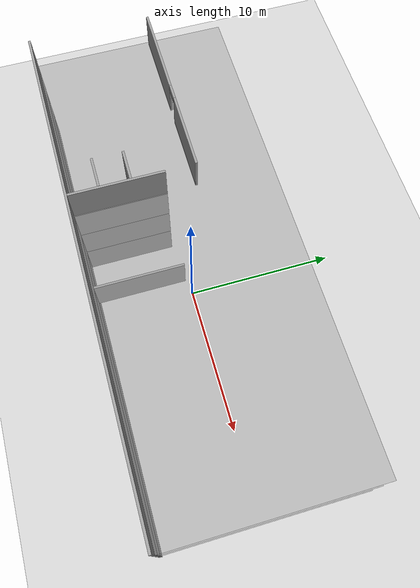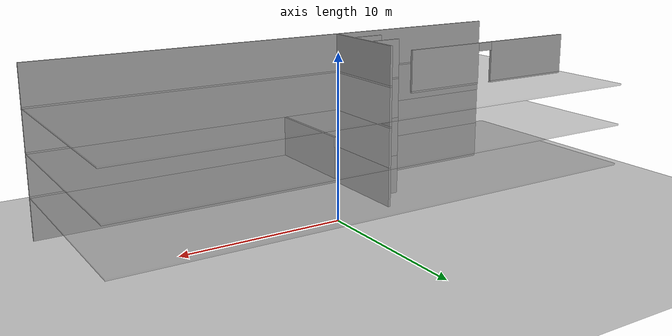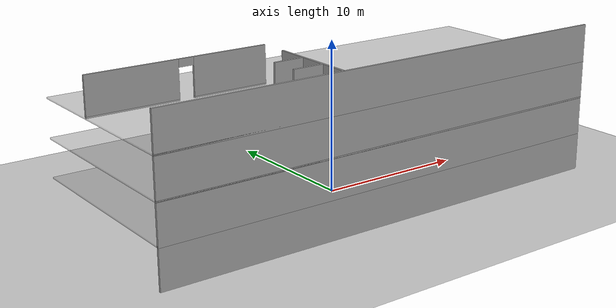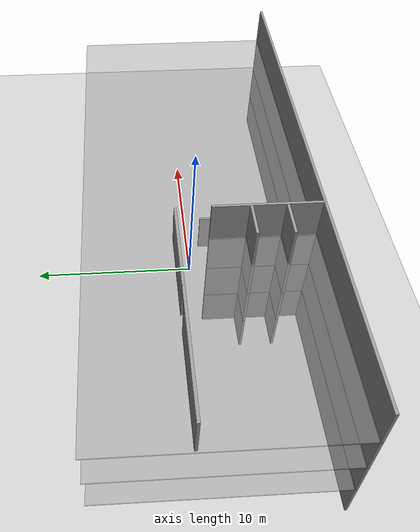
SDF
<sdf version="1.6">
 <world name="default">
  <model name="ground_plane">
   <static>1</static>
   <link name="link">
    <collision name="collision">
     <geometry><plane><normal>0 0 1</normal><size>100 100</size></plane></geometry>
     <surface>
      <contact><collide_bitmask>65535</collide_bitmask></contact>
      <friction><ode><mu>100</mu><mu2>50</mu2></ode></friction>
     </surface>
    </collision>
    <visual name="visual">
     <cast_shadows>0</cast_shadows>
     <geometry><plane><normal>0 0 1</normal><size>100 100</size></plane></geometry>
     <material>
      <script><uri>file://media/materials/scripts/gazebo.material</uri><name>Gazebo/Grey</name></script>
     </material>
    </visual>
   </link>
  </model>
  <model name="floor2plan_v2">
   <link name="Floor_0">
    <pose>1e-06 0 2.5 0 -0 0</pose>
    <inertial>
     <mass>1</mass>
     <inertia><ixx>1</ixx><ixy>0</ixy><ixz>0</ixz><iyy>1</iyy><iyz>0</iyz><izz>1</izz></inertia>
    </inertial>
    <visual name="Floor_0_Visual">
     <pose>0 0 0.05 0 -0 0</pose>
     <geometry><box><size>32 13.023 0.1</size></box></geometry>
     <material>
      <script><uri>file://media/materials/scripts/gazebo.material</uri><name>Gazebo/Grey</name></script>
      <ambient>1 1 1 1</ambient>
      <shader type="pixel"><normal_map>__default__</normal_map></shader>
      <diffuse>0.7 0.7 0.7 1</diffuse>
      <specular>0.01 0.01 0.01 1</specular>
      <emissive>0 0 0 1</emissive>
     </material>
     <meta><layer>1</layer></meta>
     <transparency>0.5</transparency>
    </visual>
    <collision name="Floor_0_Collision">
     <pose>0 0 0.05 0 -0 0</pose>
     <geometry><box><size>32 13.023 0.1</size></box></geometry>
     <surface>
      <friction>
       <ode><mu>1</mu><mu2>1</mu2><fdir1>0 0 0</fdir1><slip1>0</slip1><slip2>0</slip2></ode>
       <torsional>
        <coefficient>1</coefficient>
        <patch_radius>0</patch_radius>
        <surface_radius>0</surface_radius>
        <use_patch_radius>1</use_patch_radius>
        <ode><slip>0</slip></ode>
       </torsional>
      </friction>
      <bounce><restitution_coefficient>0</restitution_coefficient><threshold>1e+06</threshold></bounce>
      <contact>
       <collide_without_contact>0</collide_without_contact>
       <collide_without_contact_bitmask>1</collide_without_contact_bitmask>
       <collide_bitmask>1</collide_bitmask>
       <ode>
        <soft_cfm>0</soft_cfm>
        <soft_erp>0.2</soft_erp>
        <kp>1e+13</kp>
        <kd>1</kd>
        <max_vel>0.01</max_vel>
        <min_depth>0</min_depth>
       </ode>
       <bullet>
        <split_impulse>1</split_impulse>
        <split_impulse_penetration_threshold>-0.01</split_impulse_penetration_threshold>
        <soft_cfm>0</soft_cfm>
        <soft_erp>0.2</soft_erp>
        <kp>1e+13</kp>
        <kd>1</kd>
       </bullet>
      </contact>
     </surface>
    </collision>
   </link>
   <link name="Floor_1">
    <pose>1e-06 0 5 0 -0 0</pose>
    <inertial>
     <mass>1</mass>
     <inertia><ixx>1</ixx><ixy>0</ixy><ixz>0</ixz><iyy>1</iyy><iyz>0</iyz><izz>1</izz></inertia>
    </inertial>
    <visual name="Floor_1_Visual">
     <pose>0 0 0.05 0 -0 0</pose>
     <geometry><box><size>32 13.023 0.1</size></box></geometry>
     <material>
      <script><uri>file://media/materials/scripts/gazebo.material</uri><name>Gazebo/Grey</name></script>
      <ambient>1 1 1 1</ambient>
      <shader type="pixel"><normal_map>__default__</normal_map></shader>
      <diffuse>0.7 0.7 0.7 1</diffuse>
      <specular>0.01 0.01 0.01 1</specular>
      <emissive>0 0 0 1</emissive>
     </material>
     <meta><layer>2</layer></meta>
     <transparency>0.5</transparency>
    </visual>
    <collision name="Floor_1_Collision">
     <pose>0 0 0.05 0 -0 0</pose>
     <geometry><box><size>32 13.023 0.1</size></box></geometry>
     <surface>
      <friction>
       <ode><mu>1</mu><mu2>1</mu2><fdir1>0 0 0</fdir1><slip1>0</slip1><slip2>0</slip2></ode>
       <torsional>
        <coefficient>1</coefficient>
        <patch_radius>0</patch_radius>
        <surface_radius>0</surface_radius>
        <use_patch_radius>1</use_patch_radius>
        <ode><slip>0</slip></ode>
       </torsional>
      </friction>
      <bounce><restitution_coefficient>0</restitution_coefficient><threshold>1e+06</threshold></bounce>
      <contact>
       <collide_without_contact>0</collide_without_contact>
       <collide_without_contact_bitmask>1</collide_without_contact_bitmask>
       <collide_bitmask>1</collide_bitmask>
       <ode>
        <soft_cfm>0</soft_cfm>
        <soft_erp>0.2</soft_erp>
        <kp>1e+13</kp>
        <kd>1</kd>
        <max_vel>0.01</max_vel>
        <min_depth>0</min_depth>
       </ode>
       <bullet>
        <split_impulse>1</split_impulse>
        <split_impulse_penetration_threshold>-0.01</split_impulse_penetration_threshold>
        <soft_cfm>0</soft_cfm>
        <soft_erp>0.2</soft_erp>
        <kp>1e+13</kp>
        <kd>1</kd>
       </bullet>
      </contact>
     </surface>
    </collision>
   </link>
   <link name="Floor_2">
    <pose>1e-06 0 7.5 0 -0 0</pose>
    <inertial>
     <mass>1</mass>
     <inertia><ixx>1</ixx><ixy>0</ixy><ixz>0</ixz><iyy>1</iyy><iyz>0</iyz><izz>1</izz></inertia>
    </inertial>
    <visual name="Floor_2_Visual">
     <pose>0 0 0.05 0 -0 0</pose>
     <geometry><box><size>32 13.023 0.1</size></box></geometry>
     <material>
      <script><uri>file://media/materials/scripts/gazebo.material</uri><name>Gazebo/Grey</name></script>
      <ambient>1 1 1 1</ambient>
      <shader type="pixel"><normal_map>__default__</normal_map></shader>
      <diffuse>0.7 0.7 0.7 1</diffuse>
      <specular>0.01 0.01 0.01 1</specular>
      <emissive>0 0 0 1</emissive>
     </material>
     <meta><layer>3</layer></meta>
     <transparency>0.5</transparency>
    </visual>
    <collision name="Floor_2_Collision">
     <pose>0 0 0.05 0 -0 0</pose>
     <geometry><box><size>32 13.023 0.1</size></box></geometry>
     <surface>
      <friction>
       <ode><mu>1</mu><mu2>1</mu2><fdir1>0 0 0</fdir1><slip1>0</slip1><slip2>0</slip2></ode>
       <torsional>
        <coefficient>1</coefficient>
        <patch_radius>0</patch_radius>
        <surface_radius>0</surface_radius>
        <use_patch_radius>1</use_patch_radius>
        <ode><slip>0</slip></ode>
       </torsional>
      </friction>
      <bounce><restitution_coefficient>0</restitution_coefficient><threshold>1e+06</threshold></bounce>
      <contact>
       <collide_without_contact>0</collide_without_contact>
       <collide_without_contact_bitmask>1</collide_without_contact_bitmask>
       <collide_bitmask>1</collide_bitmask>
       <ode>
        <soft_cfm>0</soft_cfm>
        <soft_erp>0.2</soft_erp>
        <kp>1e+13</kp>
        <kd>1</kd>
        <max_vel>0.01</max_vel>
        <min_depth>0</min_depth>
       </ode>
       <bullet>
        <split_impulse>1</split_impulse>
        <split_impulse_penetration_threshold>-0.01</split_impulse_penetration_threshold>
        <soft_cfm>0</soft_cfm>
        <soft_erp>0.2</soft_erp>
        <kp>1e+13</kp>
        <kd>1</kd>
       </bullet>
      </contact>
     </surface>
    </collision>
   </link>
   <link name="Wall_10">
    <pose>1e-06 -6.4365 0 0 -0 0</pose>
    <visual name="Wall_10_Visual">
     <pose>0 0 1.25 0 -0 0</pose>
     <geometry><box><size>32 0.15 2.5</size></box></geometry>
     <material>
      <script><uri>file://media/materials/scripts/gazebo.material</uri><name>Gazebo/Grey</name></script>
      <ambient>1 1 1 1</ambient>
      <shader type="pixel"/>
      <diffuse>0.7 0.7 0.7 1</diffuse>
      <specular>0.01 0.01 0.01 1</specular>
      <emissive>0 0 0 1</emissive>
     </material>
     <meta><layer>0</layer></meta>
    </visual>
    <collision name="Wall_10_Collision">
     <pose>0 0 1.25 0 -0 0</pose>
     <geometry><box><size>32 0.15 2.5</size></box></geometry>
     <surface>
      <friction>
       <ode><mu>1</mu><mu2>1</mu2><fdir1>0 0 0</fdir1><slip1>0</slip1><slip2>0</slip2></ode>
       <torsional>
        <coefficient>1</coefficient>
        <patch_radius>0</patch_radius>
        <surface_radius>0</surface_radius>
        <use_patch_radius>1</use_patch_radius>
        <ode><slip>0</slip></ode>
       </torsional>
      </friction>
      <bounce><restitution_coefficient>0</restitution_coefficient><threshold>1e+06</threshold></bounce>
      <contact>
       <collide_without_contact>0</collide_without_contact>
       <collide_without_contact_bitmask>1</collide_without_contact_bitmask>
       <collide_bitmask>1</collide_bitmask>
       <ode>
        <soft_cfm>0</soft_cfm>
        <soft_erp>0.2</soft_erp>
        <kp>1e+13</kp>
        <kd>1</kd>
        <max_vel>0.01</max_vel>
        <min_depth>0</min_depth>
       </ode>
       <bullet>
        <split_impulse>1</split_impulse>
        <split_impulse_penetration_threshold>-0.01</split_impulse_penetration_threshold>
        <soft_cfm>0</soft_cfm>
        <soft_erp>0.2</soft_erp>
        <kp>1e+13</kp>
        <kd>1</kd>
       </bullet>
      </contact>
     </surface>
    </collision>
   </link>
   <link name="Wall_100">
    <pose>1e-06 -6.4365 5 0 -0 0</pose>
    <visual name="Wall_100_Visual">
     <pose>0 0 1.25 0 -0 0</pose>
     <geometry><box><size>32 0.15 2.5</size></box></geometry>
     <material>
      <script><uri>file://media/materials/scripts/gazebo.material</uri><name>Gazebo/Grey</name></script>
      <ambient>1 1 1 1</ambient>
      <shader type="pixel"/>
      <diffuse>0.7 0.7 0.7 1</diffuse>
      <specular>0.01 0.01 0.01 1</specular>
      <emissive>0 0 0 1</emissive>
     </material>
     <meta><layer>2</layer></meta>
    </visual>
    <collision name="Wall_100_Collision">
     <pose>0 0 1.25 0 -0 0</pose>
     <geometry><box><size>32 0.15 2.5</size></box></geometry>
     <surface>
      <friction>
       <ode><mu>1</mu><mu2>1</mu2><fdir1>0 0 0</fdir1><slip1>0</slip1><slip2>0</slip2></ode>
       <torsional>
        <coefficient>1</coefficient>
        <patch_radius>0</patch_radius>
        <surface_radius>0</surface_radius>
        <use_patch_radius>1</use_patch_radius>
        <ode><slip>0</slip></ode>
       </torsional>
      </friction>
      <bounce><restitution_coefficient>0</restitution_coefficient><threshold>1e+06</threshold></bounce>
      <contact>
       <collide_without_contact>0</collide_without_contact>
       <collide_without_contact_bitmask>1</collide_without_contact_bitmask>
       <collide_bitmask>1</collide_bitmask>
       <ode>
        <soft_cfm>0</soft_cfm>
        <soft_erp>0.2</soft_erp>
        <kp>1e+13</kp>
        <kd>1</kd>
        <max_vel>0.01</max_vel>
        <min_depth>0</min_depth>
       </ode>
       <bullet>
        <split_impulse>1</split_impulse>
        <split_impulse_penetration_threshold>-0.01</split_impulse_penetration_threshold>
        <soft_cfm>0</soft_cfm>
        <soft_erp>0.2</soft_erp>
        <kp>1e+13</kp>
        <kd>1</kd>
       </bullet>
      </contact>
     </surface>
    </collision>
   </link>
   <link name="Wall_114">
    <pose>-3.9219 -3.43428 5 0 0 -1.5708</pose>
    <visual name="Wall_114_Visual">
     <pose>0 0 1.25 0 -0 0</pose>
     <geometry><box><size>6 0.15 2.5</size></box></geometry>
     <material>
      <script><uri>file://media/materials/scripts/gazebo.material</uri><name>Gazebo/Grey</name></script>
      <ambient>1 1 1 1</ambient>
      <shader type="pixel"/>
      <diffuse>0.7 0.7 0.7 1</diffuse>
      <specular>0.01 0.01 0.01 1</specular>
      <emissive>0 0 0 1</emissive>
     </material>
     <meta><layer>2</layer></meta>
    </visual>
    <collision name="Wall_114_Collision">
     <pose>0 0 1.25 0 -0 0</pose>
     <geometry><box><size>6 0.15 2.5</size></box></geometry>
     <surface>
      <friction>
       <ode><mu>1</mu><mu2>1</mu2><fdir1>0 0 0</fdir1><slip1>0</slip1><slip2>0</slip2></ode>
       <torsional>
        <coefficient>1</coefficient>
        <patch_radius>0</patch_radius>
        <surface_radius>0</surface_radius>
        <use_patch_radius>1</use_patch_radius>
        <ode><slip>0</slip></ode>
       </torsional>
      </friction>
      <bounce><restitution_coefficient>0</restitution_coefficient><threshold>1e+06</threshold></bounce>
      <contact>
       <collide_without_contact>0</collide_without_contact>
       <collide_without_contact_bitmask>1</collide_without_contact_bitmask>
       <collide_bitmask>1</collide_bitmask>
       <ode>
        <soft_cfm>0</soft_cfm>
        <soft_erp>0.2</soft_erp>
        <kp>1e+13</kp>
        <kd>1</kd>
        <max_vel>0.01</max_vel>
        <min_depth>0</min_depth>
       </ode>
       <bullet>
        <split_impulse>1</split_impulse>
        <split_impulse_penetration_threshold>-0.01</split_impulse_penetration_threshold>
        <soft_cfm>0</soft_cfm>
        <soft_erp>0.2</soft_erp>
        <kp>1e+13</kp>
        <kd>1</kd>
       </bullet>
      </contact>
     </surface>
    </collision>
   </link>
   <link name="Wall_121">
    <pose>-4.9749 -2.53328 5 0 -0 0</pose>
    <visual name="Wall_121_Visual">
     <pose>0 0 1.25 0 -0 0</pose>
     <geometry><box><size>2 0.15 2.5</size></box></geometry>
     <material>
      <script><uri>file://media/materials/scripts/gazebo.material</uri><name>Gazebo/Grey</name></script>
      <ambient>1 1 1 1</ambient>
      <shader type="pixel"/>
      <diffuse>0.7 0.7 0.7 1</diffuse>
      <specular>0.01 0.01 0.01 1</specular>
      <emissive>0 0 0 1</emissive>
     </material>
     <meta><layer>2</layer></meta>
    </visual>
    <collision name="Wall_121_Collision">
     <pose>0 0 1.25 0 -0 0</pose>
     <geometry><box><size>2 0.15 2.5</size></box></geometry>
     <surface>
      <friction>
       <ode><mu>1</mu><mu2>1</mu2><fdir1>0 0 0</fdir1><slip1>0</slip1><slip2>0</slip2></ode>
       <torsional>
        <coefficient>1</coefficient>
        <patch_radius>0</patch_radius>
        <surface_radius>0</surface_radius>
        <use_patch_radius>1</use_patch_radius>
        <ode><slip>0</slip></ode>
       </torsional>
      </friction>
      <bounce><restitution_coefficient>0</restitution_coefficient><threshold>1e+06</threshold></bounce>
      <contact>
       <collide_without_contact>0</collide_without_contact>
       <collide_without_contact_bitmask>1</collide_without_contact_bitmask>
       <collide_bitmask>1</collide_bitmask>
       <ode>
        <soft_cfm>0</soft_cfm>
        <soft_erp>0.2</soft_erp>
        <kp>1e+13</kp>
        <kd>1</kd>
        <max_vel>0.01</max_vel>
        <min_depth>0</min_depth>
       </ode>
       <bullet>
        <split_impulse>1</split_impulse>
        <split_impulse_penetration_threshold>-0.01</split_impulse_penetration_threshold>
        <soft_cfm>0</soft_cfm>
        <soft_erp>0.2</soft_erp>
        <kp>1e+13</kp>
        <kd>1</kd>
       </bullet>
      </contact>
     </surface>
    </collision>
   </link>
   <link name="Wall_122">
    <pose>-4.9979 -4.46528 5 0 -0 0</pose>
    <visual name="Wall_122_Visual">
     <pose>0 0 1.25 0 -0 0</pose>
     <geometry><box><size>2 0.15 2.5</size></box></geometry>
     <material>
      <script><uri>file://media/materials/scripts/gazebo.material</uri><name>Gazebo/Grey</name></script>
      <ambient>1 1 1 1</ambient>
      <shader type="pixel"/>
      <diffuse>0.7 0.7 0.7 1</diffuse>
      <specular>0.01 0.01 0.01 1</specular>
      <emissive>0 0 0 1</emissive>
     </material>
     <meta><layer>2</layer></meta>
    </visual>
    <collision name="Wall_122_Collision">
     <pose>0 0 1.25 0 -0 0</pose>
     <geometry><box><size>2 0.15 2.5</size></box></geometry>
     <surface>
      <friction>
       <ode><mu>1</mu><mu2>1</mu2><fdir1>0 0 0</fdir1><slip1>0</slip1><slip2>0</slip2></ode>
       <torsional>
        <coefficient>1</coefficient>
        <patch_radius>0</patch_radius>
        <surface_radius>0</surface_radius>
        <use_patch_radius>1</use_patch_radius>
        <ode><slip>0</slip></ode>
       </torsional>
      </friction>
      <bounce><restitution_coefficient>0</restitution_coefficient><threshold>1e+06</threshold></bounce>
      <contact>
       <collide_without_contact>0</collide_without_contact>
       <collide_without_contact_bitmask>1</collide_without_contact_bitmask>
       <collide_bitmask>1</collide_bitmask>
       <ode>
        <soft_cfm>0</soft_cfm>
        <soft_erp>0.2</soft_erp>
        <kp>1e+13</kp>
        <kd>1</kd>
        <max_vel>0.01</max_vel>
        <min_depth>0</min_depth>
       </ode>
       <bullet>
        <split_impulse>1</split_impulse>
        <split_impulse_penetration_threshold>-0.01</split_impulse_penetration_threshold>
        <soft_cfm>0</soft_cfm>
        <soft_erp>0.2</soft_erp>
        <kp>1e+13</kp>
        <kd>1</kd>
       </bullet>
      </contact>
     </surface>
    </collision>
   </link>
   <link name="Wall_126">
    <pose>1e-06 -6.4365 7.5 0 -0 0</pose>
    <visual name="Wall_126_Visual">
     <pose>0 0 1.25 0 -0 0</pose>
     <geometry><box><size>32 0.15 2.5</size></box></geometry>
     <material>
      <script><uri>file://media/materials/scripts/gazebo.material</uri><name>Gazebo/Grey</name></script>
      <ambient>1 1 1 1</ambient>
      <shader type="pixel"/>
      <diffuse>0.7 0.7 0.7 1</diffuse>
      <specular>0.01 0.01 0.01 1</specular>
      <emissive>0 0 0 1</emissive>
     </material>
     <meta><layer>3</layer></meta>
    </visual>
    <collision name="Wall_126_Collision">
     <pose>0 0 1.25 0 -0 0</pose>
     <geometry><box><size>32 0.15 2.5</size></box></geometry>
     <surface>
      <friction>
       <ode><mu>1</mu><mu2>1</mu2><fdir1>0 0 0</fdir1><slip1>0</slip1><slip2>0</slip2></ode>
       <torsional>
        <coefficient>1</coefficient>
        <patch_radius>0</patch_radius>
        <surface_radius>0</surface_radius>
        <use_patch_radius>1</use_patch_radius>
        <ode><slip>0</slip></ode>
       </torsional>
      </friction>
      <bounce><restitution_coefficient>0</restitution_coefficient><threshold>1e+06</threshold></bounce>
      <contact>
       <collide_without_contact>0</collide_without_contact>
       <collide_without_contact_bitmask>1</collide_without_contact_bitmask>
       <collide_bitmask>1</collide_bitmask>
       <ode>
        <soft_cfm>0</soft_cfm>
        <soft_erp>0.2</soft_erp>
        <kp>1e+13</kp>
        <kd>1</kd>
        <max_vel>0.01</max_vel>
        <min_depth>0</min_depth>
       </ode>
       <bullet>
        <split_impulse>1</split_impulse>
        <split_impulse_penetration_threshold>-0.01</split_impulse_penetration_threshold>
        <soft_cfm>0</soft_cfm>
        <soft_erp>0.2</soft_erp>
        <kp>1e+13</kp>
        <kd>1</kd>
       </bullet>
      </contact>
     </surface>
    </collision>
   </link>
   <link name="Wall_128">
    <pose>-9.9294 1.47672 7.5 0 -0 0</pose>
    <visual name="Wall_128_Visual_0">
     <pose>-3.007 0 1.25 0 -0 0</pose>
     <geometry><box><size>5.943 0.15 2.5</size></box></geometry>
     <material>
      <script><uri>file://media/materials/scripts/gazebo.material</uri><name>Gazebo/Grey</name></script>
      <ambient>1 1 1 1</ambient>
      <shader type="pixel"/>
      <diffuse>0.7 0.7 0.7 1</diffuse>
      <specular>0.01 0.01 0.01 1</specular>
      <emissive>0 0 0 1</emissive>
     </material>
     <meta><layer>3</layer></meta>
    </visual>
    <visual name="Wall_128_Visual_1">
     <pose>3.4715 0 1.25 0 -0 0</pose>
     <geometry><box><size>5.014 0.15 2.5</size></box></geometry>
     <material>
      <script><uri>file://media/materials/scripts/gazebo.material</uri><name>Gazebo/Grey</name></script>
      <ambient>1 1 1 1</ambient>
      <shader type="pixel"/>
      <diffuse>0.7 0.7 0.7 1</diffuse>
      <specular>0.01 0.01 0.01 1</specular>
      <emissive>0 0 0 1</emissive>
     </material>
     <meta><layer>3</layer></meta>
    </visual>
    <visual name="Wall_128_Visual_2">
     <pose>0.4645 0 2.25 0 -0 0</pose>
     <geometry><box><size>1 0.15 0.5</size></box></geometry>
     <material>
      <script><uri>file://media/materials/scripts/gazebo.material</uri><name>Gazebo/Grey</name></script>
      <ambient>1 1 1 1</ambient>
      <shader type="pixel"/>
      <diffuse>0.7 0.7 0.7 1</diffuse>
      <specular>0.01 0.01 0.01 1</specular>
      <emissive>0 0 0 1</emissive>
     </material>
     <meta><layer>3</layer></meta>
    </visual>
    <collision name="Wall_128_Collision_0">
     <pose>-3.007 0 1.25 0 -0 0</pose>
     <geometry><box><size>5.943 0.15 2.5</size></box></geometry>
     <surface>
      <friction>
       <ode><mu>1</mu><mu2>1</mu2><fdir1>0 0 0</fdir1><slip1>0</slip1><slip2>0</slip2></ode>
       <torsional>
        <coefficient>1</coefficient>
        <patch_radius>0</patch_radius>
        <surface_radius>0</surface_radius>
        <use_patch_radius>1</use_patch_radius>
        <ode><slip>0</slip></ode>
       </torsional>
      </friction>
      <bounce><restitution_coefficient>0</restitution_coefficient><threshold>1e+06</threshold></bounce>
      <contact>
       <collide_without_contact>0</collide_without_contact>
       <collide_without_contact_bitmask>1</collide_without_contact_bitmask>
       <collide_bitmask>1</collide_bitmask>
       <ode>
        <soft_cfm>0</soft_cfm>
        <soft_erp>0.2</soft_erp>
        <kp>1e+13</kp>
        <kd>1</kd>
        <max_vel>0.01</max_vel>
        <min_depth>0</min_depth>
       </ode>
       <bullet>
        <split_impulse>1</split_impulse>
        <split_impulse_penetration_threshold>-0.01</split_impulse_penetration_threshold>
        <soft_cfm>0</soft_cfm>
        <soft_erp>0.2</soft_erp>
        <kp>1e+13</kp>
        <kd>1</kd>
       </bullet>
      </contact>
     </surface>
    </collision>
    <collision name="Wall_128_Collision_2">
     <pose>0.4645 0 2.25 0 -0 0</pose>
     <geometry><box><size>1 0.15 0.5</size></box></geometry>
     <surface>
      <friction>
       <ode><mu>1</mu><mu2>1</mu2><fdir1>0 0 0</fdir1><slip1>0</slip1><slip2>0</slip2></ode>
       <torsional>
        <coefficient>1</coefficient>
        <patch_radius>0</patch_radius>
        <surface_radius>0</surface_radius>
        <use_patch_radius>1</use_patch_radius>
        <ode><slip>0</slip></ode>
       </torsional>
      </friction>
      <bounce><restitution_coefficient>0</restitution_coefficient><threshold>1e+06</threshold></bounce>
      <contact>
       <collide_without_contact>0</collide_without_contact>
       <collide_without_contact_bitmask>1</collide_without_contact_bitmask>
       <collide_bitmask>1</collide_bitmask>
       <ode>
        <soft_cfm>0</soft_cfm>
        <soft_erp>0.2</soft_erp>
        <kp>1e+13</kp>
        <kd>1</kd>
        <max_vel>0.01</max_vel>
        <min_depth>0</min_depth>
       </ode>
       <bullet>
        <split_impulse>1</split_impulse>
        <split_impulse_penetration_threshold>-0.01</split_impulse_penetration_threshold>
        <soft_cfm>0</soft_cfm>
        <soft_erp>0.2</soft_erp>
        <kp>1e+13</kp>
        <kd>1</kd>
       </bullet>
      </contact>
     </surface>
    </collision>
    <collision name="Wall_128_Collision_1">
     <pose>3.4715 0 1.25 0 -0 0</pose>
     <geometry><box><size>5.014 0.15 2.5</size></box></geometry>
     <surface>
      <friction>
       <ode><mu>1</mu><mu2>1</mu2><fdir1>0 0 0</fdir1><slip1>0</slip1><slip2>0</slip2></ode>
       <torsional>
        <coefficient>1</coefficient>
        <patch_radius>0</patch_radius>
        <surface_radius>0</surface_radius>
        <use_patch_radius>1</use_patch_radius>
        <ode><slip>0</slip></ode>
       </torsional>
      </friction>
      <bounce><restitution_coefficient>0</restitution_coefficient><threshold>1e+06</threshold></bounce>
      <contact>
       <collide_without_contact>0</collide_without_contact>
       <collide_without_contact_bitmask>1</collide_without_contact_bitmask>
       <collide_bitmask>1</collide_bitmask>
       <ode>
        <soft_cfm>0</soft_cfm>
        <soft_erp>0.2</soft_erp>
        <kp>1e+13</kp>
        <kd>1</kd>
        <max_vel>0.01</max_vel>
        <min_depth>0</min_depth>
       </ode>
       <bullet>
        <split_impulse>1</split_impulse>
        <split_impulse_penetration_threshold>-0.01</split_impulse_penetration_threshold>
        <soft_cfm>0</soft_cfm>
        <soft_erp>0.2</soft_erp>
        <kp>1e+13</kp>
        <kd>1</kd>
       </bullet>
      </contact>
     </surface>
    </collision>
   </link>
   <link name="Wall_140">
    <pose>-3.9219 -3.43428 7.5 0 0 -1.5708</pose>
    <visual name="Wall_140_Visual">
     <pose>0 0 1.25 0 -0 0</pose>
     <geometry><box><size>6 0.15 2.5</size></box></geometry>
     <material>
      <script><uri>file://media/materials/scripts/gazebo.material</uri><name>Gazebo/Grey</name></script>
      <ambient>1 1 1 1</ambient>
      <shader type="pixel"/>
      <diffuse>0.7 0.7 0.7 1</diffuse>
      <specular>0.01 0.01 0.01 1</specular>
      <emissive>0 0 0 1</emissive>
     </material>
     <meta><layer>3</layer></meta>
    </visual>
    <collision name="Wall_140_Collision">
     <pose>0 0 1.25 0 -0 0</pose>
     <geometry><box><size>6 0.15 2.5</size></box></geometry>
     <surface>
      <friction>
       <ode><mu>1</mu><mu2>1</mu2><fdir1>0 0 0</fdir1><slip1>0</slip1><slip2>0</slip2></ode>
       <torsional>
        <coefficient>1</coefficient>
        <patch_radius>0</patch_radius>
        <surface_radius>0</surface_radius>
        <use_patch_radius>1</use_patch_radius>
        <ode><slip>0</slip></ode>
       </torsional>
      </friction>
      <bounce><restitution_coefficient>0</restitution_coefficient><threshold>1e+06</threshold></bounce>
      <contact>
       <collide_without_contact>0</collide_without_contact>
       <collide_without_contact_bitmask>1</collide_without_contact_bitmask>
       <collide_bitmask>1</collide_bitmask>
       <ode>
        <soft_cfm>0</soft_cfm>
        <soft_erp>0.2</soft_erp>
        <kp>1e+13</kp>
        <kd>1</kd>
        <max_vel>0.01</max_vel>
        <min_depth>0</min_depth>
       </ode>
       <bullet>
        <split_impulse>1</split_impulse>
        <split_impulse_penetration_threshold>-0.01</split_impulse_penetration_threshold>
        <soft_cfm>0</soft_cfm>
        <soft_erp>0.2</soft_erp>
        <kp>1e+13</kp>
        <kd>1</kd>
       </bullet>
      </contact>
     </surface>
    </collision>
   </link>
   <link name="Wall_147">
    <pose>-4.9749 -2.53328 7.5 0 -0 0</pose>
    <visual name="Wall_147_Visual">
     <pose>0 0 1.25 0 -0 0</pose>
     <geometry><box><size>2 0.15 2.5</size></box></geometry>
     <material>
      <script><uri>file://media/materials/scripts/gazebo.material</uri><name>Gazebo/Grey</name></script>
      <ambient>1 1 1 1</ambient>
      <shader type="pixel"/>
      <diffuse>0.7 0.7 0.7 1</diffuse>
      <specular>0.01 0.01 0.01 1</specular>
      <emissive>0 0 0 1</emissive>
     </material>
     <meta><layer>3</layer></meta>
    </visual>
    <collision name="Wall_147_Collision">
     <pose>0 0 1.25 0 -0 0</pose>
     <geometry><box><size>2 0.15 2.5</size></box></geometry>
     <surface>
      <friction>
       <ode><mu>1</mu><mu2>1</mu2><fdir1>0 0 0</fdir1><slip1>0</slip1><slip2>0</slip2></ode>
       <torsional>
        <coefficient>1</coefficient>
        <patch_radius>0</patch_radius>
        <surface_radius>0</surface_radius>
        <use_patch_radius>1</use_patch_radius>
        <ode><slip>0</slip></ode>
       </torsional>
      </friction>
      <bounce><restitution_coefficient>0</restitution_coefficient><threshold>1e+06</threshold></bounce>
      <contact>
       <collide_without_contact>0</collide_without_contact>
       <collide_without_contact_bitmask>1</collide_without_contact_bitmask>
       <collide_bitmask>1</collide_bitmask>
       <ode>
        <soft_cfm>0</soft_cfm>
        <soft_erp>0.2</soft_erp>
        <kp>1e+13</kp>
        <kd>1</kd>
        <max_vel>0.01</max_vel>
        <min_depth>0</min_depth>
       </ode>
       <bullet>
        <split_impulse>1</split_impulse>
        <split_impulse_penetration_threshold>-0.01</split_impulse_penetration_threshold>
        <soft_cfm>0</soft_cfm>
        <soft_erp>0.2</soft_erp>
        <kp>1e+13</kp>
        <kd>1</kd>
       </bullet>
      </contact>
     </surface>
    </collision>
   </link>
   <link name="Wall_148">
    <pose>-4.9979 -4.46528 7.5 0 -0 0</pose>
    <visual name="Wall_148_Visual">
     <pose>0 0 1.25 0 -0 0</pose>
     <geometry><box><size>2 0.15 2.5</size></box></geometry>
     <material>
      <script><uri>file://media/materials/scripts/gazebo.material</uri><name>Gazebo/Grey</name></script>
      <ambient>1 1 1 1</ambient>
      <shader type="pixel"/>
      <diffuse>0.7 0.7 0.7 1</diffuse>
      <specular>0.01 0.01 0.01 1</specular>
      <emissive>0 0 0 1</emissive>
     </material>
     <meta><layer>3</layer></meta>
    </visual>
    <collision name="Wall_148_Collision">
     <pose>0 0 1.25 0 -0 0</pose>
     <geometry><box><size>2 0.15 2.5</size></box></geometry>
     <surface>
      <friction>
       <ode><mu>1</mu><mu2>1</mu2><fdir1>0 0 0</fdir1><slip1>0</slip1><slip2>0</slip2></ode>
       <torsional>
        <coefficient>1</coefficient>
        <patch_radius>0</patch_radius>
        <surface_radius>0</surface_radius>
        <use_patch_radius>1</use_patch_radius>
        <ode><slip>0</slip></ode>
       </torsional>
      </friction>
      <bounce><restitution_coefficient>0</restitution_coefficient><threshold>1e+06</threshold></bounce>
      <contact>
       <collide_without_contact>0</collide_without_contact>
       <collide_without_contact_bitmask>1</collide_without_contact_bitmask>
       <collide_bitmask>1</collide_bitmask>
       <ode>
        <soft_cfm>0</soft_cfm>
        <soft_erp>0.2</soft_erp>
        <kp>1e+13</kp>
        <kd>1</kd>
        <max_vel>0.01</max_vel>
        <min_depth>0</min_depth>
       </ode>
       <bullet>
        <split_impulse>1</split_impulse>
        <split_impulse_penetration_threshold>-0.01</split_impulse_penetration_threshold>
        <soft_cfm>0</soft_cfm>
        <soft_erp>0.2</soft_erp>
        <kp>1e+13</kp>
        <kd>1</kd>
       </bullet>
      </contact>
     </surface>
    </collision>
   </link>
   <link name="Wall_51">
    <pose>-3.9219 -3.43428 0 0 0 -1.5708</pose>
    <visual name="Wall_51_Visual">
     <pose>0 0 1.25 0 -0 0</pose>
     <geometry><box><size>6 0.15 2.5</size></box></geometry>
     <material>
      <script><uri>file://media/materials/scripts/gazebo.material</uri><name>Gazebo/Grey</name></script>
      <ambient>1 1 1 1</ambient>
      <shader type="pixel"/>
      <diffuse>0.7 0.7 0.7 1</diffuse>
      <specular>0.01 0.01 0.01 1</specular>
      <emissive>0 0 0 1</emissive>
     </material>
     <meta><layer>0</layer></meta>
    </visual>
    <collision name="Wall_51_Collision">
     <pose>0 0 1.25 0 -0 0</pose>
     <geometry><box><size>6 0.15 2.5</size></box></geometry>
     <surface>
      <friction>
       <ode><mu>1</mu><mu2>1</mu2><fdir1>0 0 0</fdir1><slip1>0</slip1><slip2>0</slip2></ode>
       <torsional>
        <coefficient>1</coefficient>
        <patch_radius>0</patch_radius>
        <surface_radius>0</surface_radius>
        <use_patch_radius>1</use_patch_radius>
        <ode><slip>0</slip></ode>
       </torsional>
      </friction>
      <bounce><restitution_coefficient>0</restitution_coefficient><threshold>1e+06</threshold></bounce>
      <contact>
       <collide_without_contact>0</collide_without_contact>
       <collide_without_contact_bitmask>1</collide_without_contact_bitmask>
       <collide_bitmask>1</collide_bitmask>
       <ode>
        <soft_cfm>0</soft_cfm>
        <soft_erp>0.2</soft_erp>
        <kp>1e+13</kp>
        <kd>1</kd>
        <max_vel>0.01</max_vel>
        <min_depth>0</min_depth>
       </ode>
       <bullet>
        <split_impulse>1</split_impulse>
        <split_impulse_penetration_threshold>-0.01</split_impulse_penetration_threshold>
        <soft_cfm>0</soft_cfm>
        <soft_erp>0.2</soft_erp>
        <kp>1e+13</kp>
        <kd>1</kd>
       </bullet>
      </contact>
     </surface>
    </collision>
   </link>
   <link name="Wall_66">
    <pose>-4.9749 -2.53328 0 0 -0 0</pose>
    <visual name="Wall_66_Visual">
     <pose>0 0 1.25 0 -0 0</pose>
     <geometry><box><size>2 0.15 2.5</size></box></geometry>
     <material>
      <script><uri>file://media/materials/scripts/gazebo.material</uri><name>Gazebo/Grey</name></script>
      <ambient>1 1 1 1</ambient>
      <shader type="pixel"/>
      <diffuse>0.7 0.7 0.7 1</diffuse>
      <specular>0.01 0.01 0.01 1</specular>
      <emissive>0 0 0 1</emissive>
     </material>
     <meta><layer>0</layer></meta>
    </visual>
    <collision name="Wall_66_Collision">
     <pose>0 0 1.25 0 -0 0</pose>
     <geometry><box><size>2 0.15 2.5</size></box></geometry>
     <surface>
      <friction>
       <ode><mu>1</mu><mu2>1</mu2><fdir1>0 0 0</fdir1><slip1>0</slip1><slip2>0</slip2></ode>
       <torsional>
        <coefficient>1</coefficient>
        <patch_radius>0</patch_radius>
        <surface_radius>0</surface_radius>
        <use_patch_radius>1</use_patch_radius>
        <ode><slip>0</slip></ode>
       </torsional>
      </friction>
      <bounce><restitution_coefficient>0</restitution_coefficient><threshold>1e+06</threshold></bounce>
      <contact>
       <collide_without_contact>0</collide_without_contact>
       <collide_without_contact_bitmask>1</collide_without_contact_bitmask>
       <collide_bitmask>1</collide_bitmask>
       <ode>
        <soft_cfm>0</soft_cfm>
        <soft_erp>0.2</soft_erp>
        <kp>1e+13</kp>
        <kd>1</kd>
        <max_vel>0.01</max_vel>
        <min_depth>0</min_depth>
       </ode>
       <bullet>
        <split_impulse>1</split_impulse>
        <split_impulse_penetration_threshold>-0.01</split_impulse_penetration_threshold>
        <soft_cfm>0</soft_cfm>
        <soft_erp>0.2</soft_erp>
        <kp>1e+13</kp>
        <kd>1</kd>
       </bullet>
      </contact>
     </surface>
    </collision>
   </link>
   <link name="Wall_68">
    <pose>-4.9979 -4.46528 0 0 -0 0</pose>
    <visual name="Wall_68_Visual">
     <pose>0 0 1.25 0 -0 0</pose>
     <geometry><box><size>2 0.15 2.5</size></box></geometry>
     <material>
      <script><uri>file://media/materials/scripts/gazebo.material</uri><name>Gazebo/Grey</name></script>
      <ambient>1 1 1 1</ambient>
      <shader type="pixel"/>
      <diffuse>0.7 0.7 0.7 1</diffuse>
      <specular>0.01 0.01 0.01 1</specular>
      <emissive>0 0 0 1</emissive>
     </material>
     <meta><layer>0</layer></meta>
    </visual>
    <collision name="Wall_68_Collision">
     <pose>0 0 1.25 0 -0 0</pose>
     <geometry><box><size>2 0.15 2.5</size></box></geometry>
     <surface>
      <friction>
       <ode><mu>1</mu><mu2>1</mu2><fdir1>0 0 0</fdir1><slip1>0</slip1><slip2>0</slip2></ode>
       <torsional>
        <coefficient>1</coefficient>
        <patch_radius>0</patch_radius>
        <surface_radius>0</surface_radius>
        <use_patch_radius>1</use_patch_radius>
        <ode><slip>0</slip></ode>
       </torsional>
      </friction>
      <bounce><restitution_coefficient>0</restitution_coefficient><threshold>1e+06</threshold></bounce>
      <contact>
       <collide_without_contact>0</collide_without_contact>
       <collide_without_contact_bitmask>1</collide_without_contact_bitmask>
       <collide_bitmask>1</collide_bitmask>
       <ode>
        <soft_cfm>0</soft_cfm>
        <soft_erp>0.2</soft_erp>
        <kp>1e+13</kp>
        <kd>1</kd>
        <max_vel>0.01</max_vel>
        <min_depth>0</min_depth>
       </ode>
       <bullet>
        <split_impulse>1</split_impulse>
        <split_impulse_penetration_threshold>-0.01</split_impulse_penetration_threshold>
        <soft_cfm>0</soft_cfm>
        <soft_erp>0.2</soft_erp>
        <kp>1e+13</kp>
        <kd>1</kd>
       </bullet>
      </contact>
     </surface>
    </collision>
   </link>
   <link name="Wall_74">
    <pose>1e-06 -6.4365 2.5 0 -0 0</pose>
    <visual name="Wall_74_Visual">
     <pose>0 0 1.25 0 -0 0</pose>
     <geometry><box><size>32 0.15 2.5</size></box></geometry>
     <material>
      <script><uri>file://media/materials/scripts/gazebo.material</uri><name>Gazebo/Grey</name></script>
      <ambient>1 1 1 1</ambient>
      <shader type="pixel"/>
      <diffuse>0.7 0.7 0.7 1</diffuse>
      <specular>0.01 0.01 0.01 1</specular>
      <emissive>0 0 0 1</emissive>
     </material>
     <meta><layer>1</layer></meta>
    </visual>
    <collision name="Wall_74_Collision">
     <pose>0 0 1.25 0 -0 0</pose>
     <geometry><box><size>32 0.15 2.5</size></box></geometry>
     <surface>
      <friction>
       <ode><mu>1</mu><mu2>1</mu2><fdir1>0 0 0</fdir1><slip1>0</slip1><slip2>0</slip2></ode>
       <torsional>
        <coefficient>1</coefficient>
        <patch_radius>0</patch_radius>
        <surface_radius>0</surface_radius>
        <use_patch_radius>1</use_patch_radius>
        <ode><slip>0</slip></ode>
       </torsional>
      </friction>
      <bounce><restitution_coefficient>0</restitution_coefficient><threshold>1e+06</threshold></bounce>
      <contact>
       <collide_without_contact>0</collide_without_contact>
       <collide_without_contact_bitmask>1</collide_without_contact_bitmask>
       <collide_bitmask>1</collide_bitmask>
       <ode>
        <soft_cfm>0</soft_cfm>
        <soft_erp>0.2</soft_erp>
        <kp>1e+13</kp>
        <kd>1</kd>
        <max_vel>0.01</max_vel>
        <min_depth>0</min_depth>
       </ode>
       <bullet>
        <split_impulse>1</split_impulse>
        <split_impulse_penetration_threshold>-0.01</split_impulse_penetration_threshold>
        <soft_cfm>0</soft_cfm>
        <soft_erp>0.2</soft_erp>
        <kp>1e+13</kp>
        <kd>1</kd>
       </bullet>
      </contact>
     </surface>
    </collision>
   </link>
   <link name="Wall_88">
    <pose>-3.9219 -3.43428 2.5 0 0 -1.5708</pose>
    <visual name="Wall_88_Visual">
     <pose>0 0 1.25 0 -0 0</pose>
     <geometry><box><size>6 0.15 2.5</size></box></geometry>
     <material>
      <script><uri>file://media/materials/scripts/gazebo.material</uri><name>Gazebo/Grey</name></script>
      <ambient>1 1 1 1</ambient>
      <shader type="pixel"/>
      <diffuse>0.7 0.7 0.7 1</diffuse>
      <specular>0.01 0.01 0.01 1</specular>
      <emissive>0 0 0 1</emissive>
     </material>
     <meta><layer>1</layer></meta>
    </visual>
    <collision name="Wall_88_Collision">
     <pose>0 0 1.25 0 -0 0</pose>
     <geometry><box><size>6 0.15 2.5</size></box></geometry>
     <surface>
      <friction>
       <ode><mu>1</mu><mu2>1</mu2><fdir1>0 0 0</fdir1><slip1>0</slip1><slip2>0</slip2></ode>
       <torsional>
        <coefficient>1</coefficient>
        <patch_radius>0</patch_radius>
        <surface_radius>0</surface_radius>
        <use_patch_radius>1</use_patch_radius>
        <ode><slip>0</slip></ode>
       </torsional>
      </friction>
      <bounce><restitution_coefficient>0</restitution_coefficient><threshold>1e+06</threshold></bounce>
      <contact>
       <collide_without_contact>0</collide_without_contact>
       <collide_without_contact_bitmask>1</collide_without_contact_bitmask>
       <collide_bitmask>1</collide_bitmask>
       <ode>
        <soft_cfm>0</soft_cfm>
        <soft_erp>0.2</soft_erp>
        <kp>1e+13</kp>
        <kd>1</kd>
        <max_vel>0.01</max_vel>
        <min_depth>0</min_depth>
       </ode>
       <bullet>
        <split_impulse>1</split_impulse>
        <split_impulse_penetration_threshold>-0.01</split_impulse_penetration_threshold>
        <soft_cfm>0</soft_cfm>
        <soft_erp>0.2</soft_erp>
        <kp>1e+13</kp>
        <kd>1</kd>
       </bullet>
      </contact>
     </surface>
    </collision>
   </link>
   <link name="Wall_91">
    <pose>-0.011896 -3.45728 2.5 0 0 -1.5708</pose>
    <visual name="Wall_91_Visual">
     <pose>0 0 1.25 0 -0 0</pose>
     <geometry><box><size>6 0.15 2.5</size></box></geometry>
     <material>
      <script><uri>file://media/materials/scripts/gazebo.material</uri><name>Gazebo/Grey</name></script>
      <ambient>1 1 1 1</ambient>
      <shader type="pixel"/>
      <diffuse>0.7 0.7 0.7 1</diffuse>
      <specular>0.01 0.01 0.01 1</specular>
      <emissive>0 0 0 1</emissive>
     </material>
     <meta><layer>1</layer></meta>
    </visual>
    <collision name="Wall_91_Collision">
     <pose>0 0 1.25 0 -0 0</pose>
     <geometry><box><size>6 0.15 2.5</size></box></geometry>
     <surface>
      <friction>
       <ode><mu>1</mu><mu2>1</mu2><fdir1>0 0 0</fdir1><slip1>0</slip1><slip2>0</slip2></ode>
       <torsional>
        <coefficient>1</coefficient>
        <patch_radius>0</patch_radius>
        <surface_radius>0</surface_radius>
        <use_patch_radius>1</use_patch_radius>
        <ode><slip>0</slip></ode>
       </torsional>
      </friction>
      <bounce><restitution_coefficient>0</restitution_coefficient><threshold>1e+06</threshold></bounce>
      <contact>
       <collide_without_contact>0</collide_without_contact>
       <collide_without_contact_bitmask>1</collide_without_contact_bitmask>
       <collide_bitmask>1</collide_bitmask>
       <ode>
        <soft_cfm>0</soft_cfm>
        <soft_erp>0.2</soft_erp>
        <kp>1e+13</kp>
        <kd>1</kd>
        <max_vel>0.01</max_vel>
        <min_depth>0</min_depth>
       </ode>
       <bullet>
        <split_impulse>1</split_impulse>
        <split_impulse_penetration_threshold>-0.01</split_impulse_penetration_threshold>
        <soft_cfm>0</soft_cfm>
        <soft_erp>0.2</soft_erp>
        <kp>1e+13</kp>
        <kd>1</kd>
       </bullet>
      </contact>
     </surface>
    </collision>
   </link>
   <link name="Wall_95">
    <pose>-4.9749 -2.53328 2.5 0 -0 0</pose>
    <visual name="Wall_95_Visual">
     <pose>0 0 1.25 0 -0 0</pose>
     <geometry><box><size>2 0.15 2.5</size></box></geometry>
     <material>
      <script><uri>file://media/materials/scripts/gazebo.material</uri><name>Gazebo/Grey</name></script>
      <ambient>1 1 1 1</ambient>
      <shader type="pixel"/>
      <diffuse>0.7 0.7 0.7 1</diffuse>
      <specular>0.01 0.01 0.01 1</specular>
      <emissive>0 0 0 1</emissive>
     </material>
     <meta><layer>1</layer></meta>
    </visual>
    <collision name="Wall_95_Collision">
     <pose>0 0 1.25 0 -0 0</pose>
     <geometry><box><size>2 0.15 2.5</size></box></geometry>
     <surface>
      <friction>
       <ode><mu>1</mu><mu2>1</mu2><fdir1>0 0 0</fdir1><slip1>0</slip1><slip2>0</slip2></ode>
       <torsional>
        <coefficient>1</coefficient>
        <patch_radius>0</patch_radius>
        <surface_radius>0</surface_radius>
        <use_patch_radius>1</use_patch_radius>
        <ode><slip>0</slip></ode>
       </torsional>
      </friction>
      <bounce><restitution_coefficient>0</restitution_coefficient><threshold>1e+06</threshold></bounce>
      <contact>
       <collide_without_contact>0</collide_without_contact>
       <collide_without_contact_bitmask>1</collide_without_contact_bitmask>
       <collide_bitmask>1</collide_bitmask>
       <ode>
        <soft_cfm>0</soft_cfm>
        <soft_erp>0.2</soft_erp>
        <kp>1e+13</kp>
        <kd>1</kd>
        <max_vel>0.01</max_vel>
        <min_depth>0</min_depth>
       </ode>
       <bullet>
        <split_impulse>1</split_impulse>
        <split_impulse_penetration_threshold>-0.01</split_impulse_penetration_threshold>
        <soft_cfm>0</soft_cfm>
        <soft_erp>0.2</soft_erp>
        <kp>1e+13</kp>
        <kd>1</kd>
       </bullet>
      </contact>
     </surface>
    </collision>
   </link>
   <link name="Wall_96">
    <pose>-4.9979 -4.46528 2.5 0 -0 0</pose>
    <visual name="Wall_96_Visual">
     <pose>0 0 1.25 0 -0 0</pose>
     <geometry><box><size>2 0.15 2.5</size></box></geometry>
     <material>
      <script><uri>file://media/materials/scripts/gazebo.material</uri><name>Gazebo/Grey</name></script>
      <ambient>1 1 1 1</ambient>
      <shader type="pixel"/>
      <diffuse>0.7 0.7 0.7 1</diffuse>
      <specular>0.01 0.01 0.01 1</specular>
      <emissive>0 0 0 1</emissive>
     </material>
     <meta><layer>1</layer></meta>
    </visual>
    <collision name="Wall_96_Collision">
     <pose>0 0 1.25 0 -0 0</pose>
     <geometry><box><size>2 0.15 2.5</size></box></geometry>
     <surface>
      <friction>
       <ode><mu>1</mu><mu2>1</mu2><fdir1>0 0 0</fdir1><slip1>0</slip1><slip2>0</slip2></ode>
       <torsional>
        <coefficient>1</coefficient>
        <patch_radius>0</patch_radius>
        <surface_radius>0</surface_radius>
        <use_patch_radius>1</use_patch_radius>
        <ode><slip>0</slip></ode>
       </torsional>
      </friction>
      <bounce><restitution_coefficient>0</restitution_coefficient><threshold>1e+06</threshold></bounce>
      <contact>
       <collide_without_contact>0</collide_without_contact>
       <collide_without_contact_bitmask>1</collide_without_contact_bitmask>
       <collide_bitmask>1</collide_bitmask>
       <ode>
        <soft_cfm>0</soft_cfm>
        <soft_erp>0.2</soft_erp>
        <kp>1e+13</kp>
        <kd>1</kd>
        <max_vel>0.01</max_vel>
        <min_depth>0</min_depth>
       </ode>
       <bullet>
        <split_impulse>1</split_impulse>
        <split_impulse_penetration_threshold>-0.01</split_impulse_penetration_threshold>
        <soft_cfm>0</soft_cfm>
        <soft_erp>0.2</soft_erp>
        <kp>1e+13</kp>
        <kd>1</kd>
       </bullet>
      </contact>
     </surface>
    </collision>
   </link>
   <static>1</static>
   <pose>-0.074109 0.009792 0 0 -0 0</pose>
  </model>
 </world>
</sdf>
